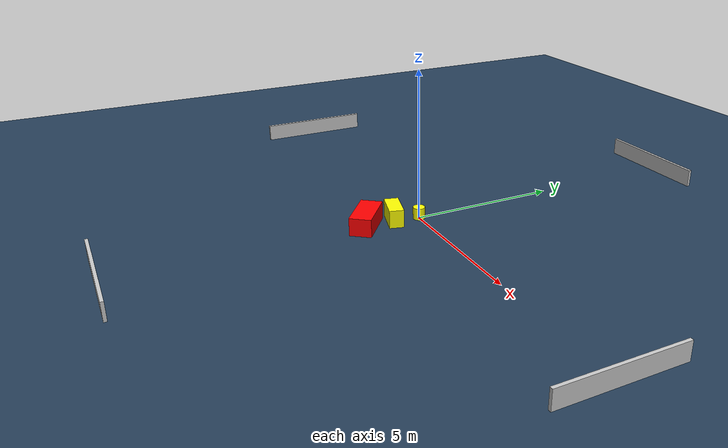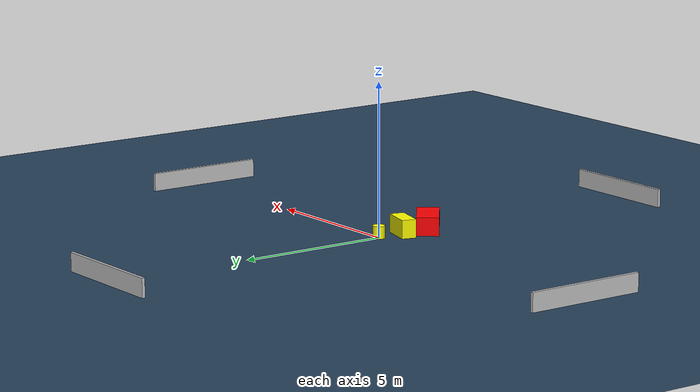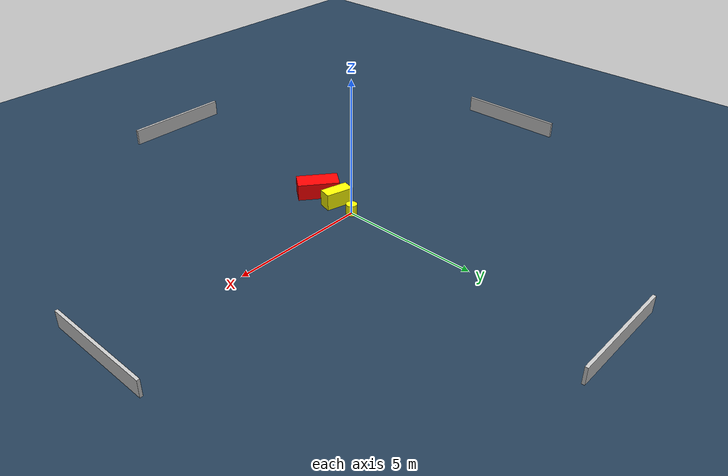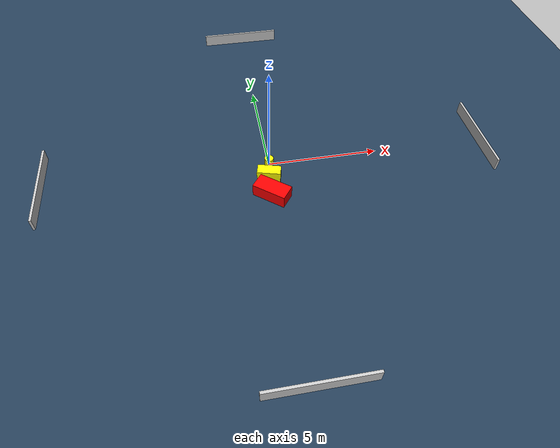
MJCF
<?xml version="1.0" ?>
<mujoco model="generated_environment">
  <option timestep="0.01" integrator="RK4" cone="elliptic"/>
  <default>
    <geom density="1"/>
  </default>
  <asset>
    <texture builtin="gradient" height="3072" name="skybox" rgb1="0.3 0.5 0.7" rgb2="0 0 0" type="skybox" width="512"/>
    <texture builtin="checker" height="300" name="groundplane" rgb1="0.2 0.3 0.4" rgb2="0.1 0.2 0.3" type="2d" width="300"/>
    <material name="groundplane" reflectance="0.2" texrepeat="5 5" texture="groundplane"/>
  </asset>
  <worldbody>
    <light dir="0 0 -1" directional="true" pos="0 0 1.5"/>
    <geom condim="3" friction="0.5 0.005 0.001" material="groundplane" name="floor" pos="0 0 0" size="0 0 0.05" type="plane"/>
    <body name="walls">
      <geom name="wall_1" condim="4" pos="-10.0 0.0 0.3" rgba="0.800000011920929 0.800000011920929 0.800000011920929 1.0" size="0.05 2.0 0.3" type="box"/>
      <geom name="wall_2" condim="4" pos="10.0 0.0 0.3" rgba="0.800000011920929 0.800000011920929 0.800000011920929 1.0" size="0.05 2.0 0.3" type="box"/>
      <geom name="wall_3" condim="4" pos="0.0 -10.0 0.3" rgba="0.800000011920929 0.800000011920929 0.800000011920929 1.0" size="2.0 0.05 0.3" type="box"/>
      <geom name="wall_4" condim="4" pos="0.0 10.0 0.3" rgba="0.800000011920929 0.800000011920929 0.800000011920929 1.0" size="2.0 0.05 0.3" type="box"/>
    </body>
    <body name="robot">
      <joint name="joint_x" type="slide" pos="0 0 0" axis="1 0 0"/>
      <joint name="joint_y" type="slide" pos="0 0 0" axis="0 1 0"/>
      <geom name="robot" type="cylinder" pos="0.0 0.0 0.2" size="0.2 0.2 0.0" mass="5.0" friction="1.0 0.005 0.0001" condim="4" rgba="1.0 1.0 0.0 1.0"/>
    </body>
    <body name="obstacle_1_movable">
      <geom name="obstacle_1_movable" condim="4" pos="-0.13970925905430812 -0.8461928465021226 0.3" euler="0 0 345.238327863081" friction="0.0 0.005 0.001" rgba="1.0 1.0 0.0 1.0" size="0.5138448523229904 0.2399026916587838 0.3" type="box" mass="0.1"/>
      <joint type="free"/>
    </body>
    <body name="obstacle_2_static">
      <geom name="obstacle_2_static" condim="4" pos="-0.16698285766572027 -1.8186556217886614 0.3" euler="0 0 51.89209654990482" friction="0.0 0.005 0.001" rgba="1.0 0.0 0.0 1.0" size="0.36291395097965196 0.7506231315569993 0.3" type="box"/>
    </body>
  </worldbody>
  <actuator>
    <motor name="actuator_x" joint="joint_x" gear="1" ctrlrange="-1 1"/>
    <motor name="actuator_y" joint="joint_y" gear="1" ctrlrange="-1 1"/>
  </actuator>
</mujoco>
